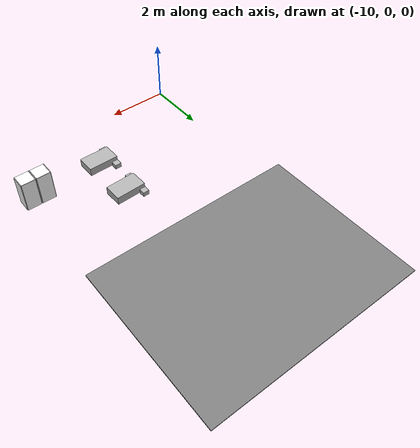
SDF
<sdf version="1.7">
 <world name="default">
  <model name="asphalt_tile_03_01">
   <static>1</static>
   <pose>-7.200 8.250 -0.020 0 -0 0</pose>
   <link name="link">
    <collision name="collision"><geometry><box><size>7.200 5.500 0.040</size></box></geometry></collision>
    <visual name="visual">
     <cast_shadows>0</cast_shadows>
     <geometry><box><size>7.200 5.500 0.040</size></box></geometry>
     <material>
      <ambient>0.5 0.5 0.5 1</ambient>
      <diffuse>0.5 0.5 0.5 1</diffuse>
      <specular>0.2 0.2 0.2 1</specular>
      <emissive>0 0 0 1</emissive>
      <pbr>
       <metal>
        <albedo_map>model://asphalt_plane/materials/textures/tarmac.png</albedo_map>
        <roughness>0.85</roughness>
        <metalness>0</metalness>
       </metal>
      </pbr>
     </material>
    </visual>
   </link>
  </model>
  <model name="bed">
   <link name="link_1">
    <inertial>
     <mass>0.166557</mass>
     <inertia>
      <ixx>0.00618823</ixx>
      <ixy>0</ixy>
      <ixz>0</ixz>
      <iyy>0.0149173</iyy>
      <iyz>0</iyz>
      <izz>0.0190304</izz>
     </inertia>
    </inertial>
    <pose>0.268517 -0.007523 0.053425 0 -0 0</pose>
    <visual name="visual">
     <geometry><box><size>1 0.609172 0.273416</size></box></geometry>
     <material>
      <ambient>0.7 0.7 0.7 1</ambient>
      <diffuse>0.7 0.7 0.7 1</diffuse>
      <specular>0.08 0.08 0.08 1</specular>
      <emissive>0 0 0 1</emissive>
      <pbr><metal><roughness>0.8</roughness><metalness>0</metalness></metal></pbr>
     </material>
    </visual>
    <collision name="collision">
     <geometry><box><size>1 0.609172 0.273416</size></box></geometry>
     <surface>
      <friction>
       <ode><mu>1</mu><mu2>1</mu2><fdir1>0 0 0</fdir1><slip1>0</slip1><slip2>0</slip2></ode>
       <torsional>
        <coefficient>1</coefficient>
        <patch_radius>0</patch_radius>
        <surface_radius>0</surface_radius>
        <use_patch_radius>1</use_patch_radius>
        <ode><slip>0</slip></ode>
       </torsional>
      </friction>
      <bounce><restitution_coefficient>0</restitution_coefficient><threshold>1e+06</threshold></bounce>
      <contact>
       <collide_without_contact>0</collide_without_contact>
       <collide_without_contact_bitmask>1</collide_without_contact_bitmask>
       <collide_bitmask>1</collide_bitmask>
       <ode>
        <soft_cfm>0</soft_cfm>
        <soft_erp>0.2</soft_erp>
        <kp>1e+13</kp>
        <kd>1</kd>
        <max_vel>0.01</max_vel>
        <min_depth>0</min_depth>
       </ode>
       <bullet>
        <split_impulse>1</split_impulse>
        <split_impulse_penetration_threshold>-0.01</split_impulse_penetration_threshold>
        <soft_cfm>0</soft_cfm>
        <soft_erp>0.2</soft_erp>
        <kp>1e+13</kp>
        <kd>1</kd>
       </bullet>
      </contact>
     </surface>
    </collision>
   </link>
   <link name="link_2">
    <inertial>
     <mass>0.00661892</mass>
     <inertia>
      <ixx>3.651e-05</ixx>
      <ixy>0</ixy>
      <ixz>0</ixz>
      <iyy>3.722e-05</iyy>
      <iyz>0</iyz>
      <izz>4.631e-05</izz>
     </inertia>
    </inertial>
    <pose>-0.144333 -0.400103 -0.02691 0 -0 0</pose>
    <visual name="visual">
     <geometry><box><size>0.206441 0.203314 0.157681</size></box></geometry>
     <material>
      <ambient>0.7 0.7 0.7 1</ambient>
      <diffuse>0.7 0.7 0.7 1</diffuse>
      <specular>0.08 0.08 0.08 1</specular>
      <emissive>0 0 0 1</emissive>
      <pbr><metal><roughness>0.8</roughness><metalness>0</metalness></metal></pbr>
     </material>
    </visual>
    <collision name="collision">
     <geometry><box><size>0.206441 0.203314 0.157681</size></box></geometry>
     <surface>
      <friction>
       <ode><mu>1</mu><mu2>1</mu2><fdir1>0 0 0</fdir1><slip1>0</slip1><slip2>0</slip2></ode>
       <torsional>
        <coefficient>1</coefficient>
        <patch_radius>0</patch_radius>
        <surface_radius>0</surface_radius>
        <use_patch_radius>1</use_patch_radius>
        <ode><slip>0</slip></ode>
       </torsional>
      </friction>
      <bounce><restitution_coefficient>0</restitution_coefficient><threshold>1e+06</threshold></bounce>
      <contact>
       <collide_without_contact>0</collide_without_contact>
       <collide_without_contact_bitmask>1</collide_without_contact_bitmask>
       <collide_bitmask>1</collide_bitmask>
       <ode>
        <soft_cfm>0</soft_cfm>
        <soft_erp>0.2</soft_erp>
        <kp>1e+13</kp>
        <kd>1</kd>
        <max_vel>0.01</max_vel>
        <min_depth>0</min_depth>
       </ode>
       <bullet>
        <split_impulse>1</split_impulse>
        <split_impulse_penetration_threshold>-0.01</split_impulse_penetration_threshold>
        <soft_cfm>0</soft_cfm>
        <soft_erp>0.2</soft_erp>
        <kp>1e+13</kp>
        <kd>1</kd>
       </bullet>
      </contact>
     </surface>
    </collision>
   </link>
   <link name="link_2_clone">
    <inertial>
     <mass>0.00661892</mass>
     <inertia>
      <ixx>3.651e-05</ixx>
      <ixy>0</ixy>
      <ixz>0</ixz>
      <iyy>3.722e-05</iyy>
      <iyz>0</iyz>
      <izz>4.631e-05</izz>
     </inertia>
    </inertial>
    <pose>-0.124183 0.407627 -0.026515 0 -0 0</pose>
    <visual name="visual">
     <geometry><box><size>0.206441 0.203314 0.157681</size></box></geometry>
     <material>
      <ambient>0.7 0.7 0.7 1</ambient>
      <diffuse>0.7 0.7 0.7 1</diffuse>
      <specular>0.08 0.08 0.08 1</specular>
      <emissive>0 0 0 1</emissive>
      <pbr><metal><roughness>0.8</roughness><metalness>0</metalness></metal></pbr>
     </material>
    </visual>
    <collision name="collision">
     <geometry><box><size>0.206441 0.203314 0.157681</size></box></geometry>
     <surface>
      <friction>
       <ode><mu>1</mu><mu2>1</mu2><fdir1>0 0 0</fdir1><slip1>0</slip1><slip2>0</slip2></ode>
       <torsional>
        <coefficient>1</coefficient>
        <patch_radius>0</patch_radius>
        <surface_radius>0</surface_radius>
        <use_patch_radius>1</use_patch_radius>
        <ode><slip>0</slip></ode>
       </torsional>
      </friction>
      <bounce><restitution_coefficient>0</restitution_coefficient><threshold>1e+06</threshold></bounce>
      <contact>
       <collide_without_contact>0</collide_without_contact>
       <collide_without_contact_bitmask>1</collide_without_contact_bitmask>
       <collide_bitmask>1</collide_bitmask>
       <ode>
        <soft_cfm>0</soft_cfm>
        <soft_erp>0.2</soft_erp>
        <kp>1e+13</kp>
        <kd>1</kd>
        <max_vel>0.01</max_vel>
        <min_depth>0</min_depth>
       </ode>
       <bullet>
        <split_impulse>1</split_impulse>
        <split_impulse_penetration_threshold>-0.01</split_impulse_penetration_threshold>
        <soft_cfm>0</soft_cfm>
        <soft_erp>0.2</soft_erp>
        <kp>1e+13</kp>
        <kd>1</kd>
       </bullet>
      </contact>
     </surface>
    </collision>
   </link>
   <static>1</static>
   <pose>-6.50619 3.49112 0.093278 1.6e-05 -0 0.037709</pose>
  </model>
  <model name="bed_clone">
   <link name="link_1">
    <inertial>
     <mass>0.166557</mass>
     <inertia>
      <ixx>0.00618823</ixx>
      <ixy>0</ixy>
      <ixz>0</ixz>
      <iyy>0.0149173</iyy>
      <iyz>0</iyz>
      <izz>0.0190304</izz>
     </inertia>
    </inertial>
    <pose>0.268517 -0.007523 0.053425 0 -0 0</pose>
    <visual name="visual">
     <geometry><box><size>1 0.609172 0.273416</size></box></geometry>
     <material>
      <ambient>0.7 0.7 0.7 1</ambient>
      <diffuse>0.7 0.7 0.7 1</diffuse>
      <specular>0.08 0.08 0.08 1</specular>
      <emissive>0 0 0 1</emissive>
      <pbr><metal><roughness>0.8</roughness><metalness>0</metalness></metal></pbr>
     </material>
    </visual>
    <collision name="collision">
     <geometry><box><size>1 0.609172 0.273416</size></box></geometry>
     <surface>
      <friction>
       <ode><mu>1</mu><mu2>1</mu2><fdir1>0 0 0</fdir1><slip1>0</slip1><slip2>0</slip2></ode>
       <torsional>
        <coefficient>1</coefficient>
        <patch_radius>0</patch_radius>
        <surface_radius>0</surface_radius>
        <use_patch_radius>1</use_patch_radius>
        <ode><slip>0</slip></ode>
       </torsional>
      </friction>
      <bounce><restitution_coefficient>0</restitution_coefficient><threshold>1e+06</threshold></bounce>
      <contact>
       <collide_without_contact>0</collide_without_contact>
       <collide_without_contact_bitmask>1</collide_without_contact_bitmask>
       <collide_bitmask>1</collide_bitmask>
       <ode>
        <soft_cfm>0</soft_cfm>
        <soft_erp>0.2</soft_erp>
        <kp>1e+13</kp>
        <kd>1</kd>
        <max_vel>0.01</max_vel>
        <min_depth>0</min_depth>
       </ode>
       <bullet>
        <split_impulse>1</split_impulse>
        <split_impulse_penetration_threshold>-0.01</split_impulse_penetration_threshold>
        <soft_cfm>0</soft_cfm>
        <soft_erp>0.2</soft_erp>
        <kp>1e+13</kp>
        <kd>1</kd>
       </bullet>
      </contact>
     </surface>
    </collision>
   </link>
   <link name="link_2">
    <inertial>
     <mass>0.00661892</mass>
     <inertia>
      <ixx>3.651e-05</ixx>
      <ixy>0</ixy>
      <ixz>0</ixz>
      <iyy>3.722e-05</iyy>
      <iyz>0</iyz>
      <izz>4.631e-05</izz>
     </inertia>
    </inertial>
    <pose>-0.144333 -0.400103 -0.02691 0 -0 0</pose>
    <visual name="visual">
     <geometry><box><size>0.206441 0.203314 0.157681</size></box></geometry>
     <material>
      <ambient>0.7 0.7 0.7 1</ambient>
      <diffuse>0.7 0.7 0.7 1</diffuse>
      <specular>0.08 0.08 0.08 1</specular>
      <emissive>0 0 0 1</emissive>
      <pbr><metal><roughness>0.8</roughness><metalness>0</metalness></metal></pbr>
     </material>
    </visual>
    <collision name="collision">
     <geometry><box><size>0.206441 0.203314 0.157681</size></box></geometry>
     <surface>
      <friction>
       <ode><mu>1</mu><mu2>1</mu2><fdir1>0 0 0</fdir1><slip1>0</slip1><slip2>0</slip2></ode>
       <torsional>
        <coefficient>1</coefficient>
        <patch_radius>0</patch_radius>
        <surface_radius>0</surface_radius>
        <use_patch_radius>1</use_patch_radius>
        <ode><slip>0</slip></ode>
       </torsional>
      </friction>
      <bounce><restitution_coefficient>0</restitution_coefficient><threshold>1e+06</threshold></bounce>
      <contact>
       <collide_without_contact>0</collide_without_contact>
       <collide_without_contact_bitmask>1</collide_without_contact_bitmask>
       <collide_bitmask>1</collide_bitmask>
       <ode>
        <soft_cfm>0</soft_cfm>
        <soft_erp>0.2</soft_erp>
        <kp>1e+13</kp>
        <kd>1</kd>
        <max_vel>0.01</max_vel>
        <min_depth>0</min_depth>
       </ode>
       <bullet>
        <split_impulse>1</split_impulse>
        <split_impulse_penetration_threshold>-0.01</split_impulse_penetration_threshold>
        <soft_cfm>0</soft_cfm>
        <soft_erp>0.2</soft_erp>
        <kp>1e+13</kp>
        <kd>1</kd>
       </bullet>
      </contact>
     </surface>
    </collision>
   </link>
   <link name="link_2_clone">
    <inertial>
     <mass>0.00661892</mass>
     <inertia>
      <ixx>3.651e-05</ixx>
      <ixy>0</ixy>
      <ixz>0</ixz>
      <iyy>3.722e-05</iyy>
      <iyz>0</iyz>
      <izz>4.631e-05</izz>
     </inertia>
    </inertial>
    <pose>-0.124183 0.407627 -0.026515 0 -0 0</pose>
    <visual name="visual">
     <geometry><box><size>0.206441 0.203314 0.157681</size></box></geometry>
     <material>
      <ambient>0.7 0.7 0.7 1</ambient>
      <diffuse>0.7 0.7 0.7 1</diffuse>
      <specular>0.08 0.08 0.08 1</specular>
      <emissive>0 0 0 1</emissive>
      <pbr><metal><roughness>0.8</roughness><metalness>0</metalness></metal></pbr>
     </material>
    </visual>
    <collision name="collision">
     <geometry><box><size>0.206441 0.203314 0.157681</size></box></geometry>
     <surface>
      <friction>
       <ode><mu>1</mu><mu2>1</mu2><fdir1>0 0 0</fdir1><slip1>0</slip1><slip2>0</slip2></ode>
       <torsional>
        <coefficient>1</coefficient>
        <patch_radius>0</patch_radius>
        <surface_radius>0</surface_radius>
        <use_patch_radius>1</use_patch_radius>
        <ode><slip>0</slip></ode>
       </torsional>
      </friction>
      <bounce><restitution_coefficient>0</restitution_coefficient><threshold>1e+06</threshold></bounce>
      <contact>
       <collide_without_contact>0</collide_without_contact>
       <collide_without_contact_bitmask>1</collide_without_contact_bitmask>
       <collide_bitmask>1</collide_bitmask>
       <ode>
        <soft_cfm>0</soft_cfm>
        <soft_erp>0.2</soft_erp>
        <kp>1e+13</kp>
        <kd>1</kd>
        <max_vel>0.01</max_vel>
        <min_depth>0</min_depth>
       </ode>
       <bullet>
        <split_impulse>1</split_impulse>
        <split_impulse_penetration_threshold>-0.01</split_impulse_penetration_threshold>
        <soft_cfm>0</soft_cfm>
        <soft_erp>0.2</soft_erp>
        <kp>1e+13</kp>
        <kd>1</kd>
       </bullet>
      </contact>
     </surface>
    </collision>
   </link>
   <static>1</static>
   <pose>-6.51457 1.90124 0.093283 0 -0 0.014289</pose>
  </model>
  <model name="cabinet">
   <static>1</static>
   <link name="cabinet_bottom_plate">
    <inertial>
     <pose>0 0 -1 0 -0 0</pose>
     <inertia><ixx>2.05</ixx><ixy>0</ixy><ixz>0</ixz><iyy>2.05</iyy><iyz>0</iyz><izz>2.05</izz></inertia>
     <mass>25</mass>
    </inertial>
    <collision name="cabinet_bottom_plate_geom">
     <pose>0 0 0.01 0 -0 0</pose>
     <geometry><box><size>0.45 0.45 0.02</size></box></geometry>
    </collision>
    <visual name="cabinet_bottom_plate_geom_visual">
     <pose>0 0 0.01 0 -0 0</pose>
     <geometry><box><size>0.45 0.45 0.02</size></box></geometry>
     <material>
      <ambient>1 1 1 1</ambient>
      <diffuse>1 1 1 1</diffuse>
      <specular>0.08 0.08 0.08 1</specular>
      <emissive>0 0 0 1</emissive>
      <pbr>
       <metal>
        <albedo_map>model://among_us_world/materials/textures/legacy_wood.jpg</albedo_map>
        <roughness>0.62</roughness>
        <metalness>0</metalness>
       </metal>
      </pbr>
     </material>
    </visual>
    <collision name="cabinet_bottom_plate_geom_cabinet_back_plate">
     <pose>0.235 0 0.51 0 -0 0</pose>
     <geometry><box><size>0.02 0.45 1.02</size></box></geometry>
    </collision>
    <visual name="cabinet_bottom_plate_geom_cabinet_back_plate_visual">
     <pose>0.235 0 0.51 0 -0 0</pose>
     <geometry><box><size>0.02 0.45 1.02</size></box></geometry>
     <material>
      <ambient>1 1 1 1</ambient>
      <diffuse>1 1 1 1</diffuse>
      <specular>0.08 0.08 0.08 1</specular>
      <emissive>0 0 0 1</emissive>
      <pbr>
       <metal>
        <albedo_map>model://among_us_world/materials/textures/legacy_wood.jpg</albedo_map>
        <roughness>0.62</roughness>
        <metalness>0</metalness>
       </metal>
      </pbr>
     </material>
    </visual>
    <collision name="cabinet_bottom_plate_geom_cabinet_left_plate">
     <pose>0 0.235 0.51 0 -0 0</pose>
     <geometry><box><size>0.45 0.02 1.02</size></box></geometry>
    </collision>
    <visual name="cabinet_bottom_plate_geom_cabinet_left_plate_visual">
     <pose>0 0.235 0.51 0 -0 0</pose>
     <geometry><box><size>0.45 0.02 1.02</size></box></geometry>
     <material>
      <ambient>1 1 1 1</ambient>
      <diffuse>1 1 1 1</diffuse>
      <specular>0.08 0.08 0.08 1</specular>
      <emissive>0 0 0 1</emissive>
      <pbr>
       <metal>
        <albedo_map>model://among_us_world/materials/textures/legacy_wood.jpg</albedo_map>
        <roughness>0.62</roughness>
        <metalness>0</metalness>
       </metal>
      </pbr>
     </material>
    </visual>
    <collision name="cabinet_bottom_plate_geom_cabinet_middle_plate">
     <pose>0 0 0.51 0 -0 0</pose>
     <geometry><box><size>0.45 0.45 0.02</size></box></geometry>
    </collision>
    <visual name="cabinet_bottom_plate_geom_cabinet_middle_plate_visual">
     <pose>0 0 0.51 0 -0 0</pose>
     <geometry><box><size>0.45 0.45 0.02</size></box></geometry>
     <material>
      <ambient>1 1 1 1</ambient>
      <diffuse>1 1 1 1</diffuse>
      <specular>0.08 0.08 0.08 1</specular>
      <emissive>0 0 0 1</emissive>
      <pbr>
       <metal>
        <albedo_map>model://among_us_world/materials/textures/legacy_wood.jpg</albedo_map>
        <roughness>0.62</roughness>
        <metalness>0</metalness>
       </metal>
      </pbr>
     </material>
    </visual>
    <collision name="cabinet_bottom_plate_geom_cabinet_right_plate">
     <pose>0 -0.235 0.51 0 -0 0</pose>
     <geometry><box><size>0.45 0.02 1.02</size></box></geometry>
    </collision>
    <visual name="cabinet_bottom_plate_geom_cabinet_right_plate_visual">
     <pose>0 -0.235 0.51 0 -0 0</pose>
     <geometry><box><size>0.45 0.02 1.02</size></box></geometry>
     <material>
      <ambient>1 1 1 1</ambient>
      <diffuse>1 1 1 1</diffuse>
      <specular>0.08 0.08 0.08 1</specular>
      <emissive>0 0 0 1</emissive>
      <pbr>
       <metal>
        <albedo_map>model://among_us_world/materials/textures/legacy_wood.jpg</albedo_map>
        <roughness>0.62</roughness>
        <metalness>0</metalness>
       </metal>
      </pbr>
     </material>
    </visual>
    <collision name="cabinet_bottom_plate_geom_cabinet_top_plate">
     <pose>0 0 1.01 0 -0 0</pose>
     <geometry><box><size>0.45 0.45 0.02</size></box></geometry>
    </collision>
    <visual name="cabinet_bottom_plate_geom_cabinet_top_plate_visual">
     <pose>0 0 1.01 0 -0 0</pose>
     <geometry><box><size>0.45 0.45 0.02</size></box></geometry>
     <material>
      <ambient>1 1 1 1</ambient>
      <diffuse>1 1 1 1</diffuse>
      <specular>0.08 0.08 0.08 1</specular>
      <emissive>0 0 0 1</emissive>
      <pbr>
       <metal>
        <albedo_map>model://among_us_world/materials/textures/legacy_wood.jpg</albedo_map>
        <roughness>0.62</roughness>
        <metalness>0</metalness>
       </metal>
      </pbr>
     </material>
    </visual>
   </link>
   <pose>-3.71836 2.07896 0 0 -0 1.57</pose>
  </model>
  <model name="cabinet_clone_1">
   <static>1</static>
   <link name="cabinet_bottom_plate">
    <inertial>
     <pose>0 0 -1 0 -0 0</pose>
     <inertia><ixx>2.05</ixx><ixy>0</ixy><ixz>0</ixz><iyy>2.05</iyy><iyz>0</iyz><izz>2.05</izz></inertia>
     <mass>25</mass>
    </inertial>
    <collision name="cabinet_bottom_plate_geom">
     <pose>0 0 0.01 0 -0 0</pose>
     <geometry><box><size>0.45 0.45 0.02</size></box></geometry>
    </collision>
    <visual name="cabinet_bottom_plate_geom_visual">
     <pose>0 0 0.01 0 -0 0</pose>
     <geometry><box><size>0.45 0.45 0.02</size></box></geometry>
     <material>
      <ambient>1 1 1 1</ambient>
      <diffuse>1 1 1 1</diffuse>
      <specular>0.08 0.08 0.08 1</specular>
      <emissive>0 0 0 1</emissive>
      <pbr>
       <metal>
        <albedo_map>model://among_us_world/materials/textures/legacy_wood.jpg</albedo_map>
        <roughness>0.62</roughness>
        <metalness>0</metalness>
       </metal>
      </pbr>
     </material>
    </visual>
    <collision name="cabinet_bottom_plate_geom_cabinet_back_plate">
     <pose>0.235 0 0.51 0 -0 0</pose>
     <geometry><box><size>0.02 0.45 1.02</size></box></geometry>
    </collision>
    <visual name="cabinet_bottom_plate_geom_cabinet_back_plate_visual">
     <pose>0.235 0 0.51 0 -0 0</pose>
     <geometry><box><size>0.02 0.45 1.02</size></box></geometry>
     <material>
      <ambient>1 1 1 1</ambient>
      <diffuse>1 1 1 1</diffuse>
      <specular>0.08 0.08 0.08 1</specular>
      <emissive>0 0 0 1</emissive>
      <pbr>
       <metal>
        <albedo_map>model://among_us_world/materials/textures/legacy_wood.jpg</albedo_map>
        <roughness>0.62</roughness>
        <metalness>0</metalness>
       </metal>
      </pbr>
     </material>
    </visual>
    <collision name="cabinet_bottom_plate_geom_cabinet_left_plate">
     <pose>0 0.235 0.51 0 -0 0</pose>
     <geometry><box><size>0.45 0.02 1.02</size></box></geometry>
    </collision>
    <visual name="cabinet_bottom_plate_geom_cabinet_left_plate_visual">
     <pose>0 0.235 0.51 0 -0 0</pose>
     <geometry><box><size>0.45 0.02 1.02</size></box></geometry>
     <material>
      <ambient>1 1 1 1</ambient>
      <diffuse>1 1 1 1</diffuse>
      <specular>0.08 0.08 0.08 1</specular>
      <emissive>0 0 0 1</emissive>
      <pbr>
       <metal>
        <albedo_map>model://among_us_world/materials/textures/legacy_wood.jpg</albedo_map>
        <roughness>0.62</roughness>
        <metalness>0</metalness>
       </metal>
      </pbr>
     </material>
    </visual>
    <collision name="cabinet_bottom_plate_geom_cabinet_middle_plate">
     <pose>0 0 0.51 0 -0 0</pose>
     <geometry><box><size>0.45 0.45 0.02</size></box></geometry>
    </collision>
    <visual name="cabinet_bottom_plate_geom_cabinet_middle_plate_visual">
     <pose>0 0 0.51 0 -0 0</pose>
     <geometry><box><size>0.45 0.45 0.02</size></box></geometry>
     <material>
      <ambient>1 1 1 1</ambient>
      <diffuse>1 1 1 1</diffuse>
      <specular>0.08 0.08 0.08 1</specular>
      <emissive>0 0 0 1</emissive>
      <pbr>
       <metal>
        <albedo_map>model://among_us_world/materials/textures/legacy_wood.jpg</albedo_map>
        <roughness>0.62</roughness>
        <metalness>0</metalness>
       </metal>
      </pbr>
     </material>
    </visual>
    <collision name="cabinet_bottom_plate_geom_cabinet_right_plate">
     <pose>0 -0.235 0.51 0 -0 0</pose>
     <geometry><box><size>0.45 0.02 1.02</size></box></geometry>
    </collision>
    <visual name="cabinet_bottom_plate_geom_cabinet_right_plate_visual">
     <pose>0 -0.235 0.51 0 -0 0</pose>
     <geometry><box><size>0.45 0.02 1.02</size></box></geometry>
     <material>
      <ambient>1 1 1 1</ambient>
      <diffuse>1 1 1 1</diffuse>
      <specular>0.08 0.08 0.08 1</specular>
      <emissive>0 0 0 1</emissive>
      <pbr>
       <metal>
        <albedo_map>model://among_us_world/materials/textures/legacy_wood.jpg</albedo_map>
        <roughness>0.62</roughness>
        <metalness>0</metalness>
       </metal>
      </pbr>
     </material>
    </visual>
    <collision name="cabinet_bottom_plate_geom_cabinet_top_plate">
     <pose>0 0 1.01 0 -0 0</pose>
     <geometry><box><size>0.45 0.45 0.02</size></box></geometry>
    </collision>
    <visual name="cabinet_bottom_plate_geom_cabinet_top_plate_visual">
     <pose>0 0 1.01 0 -0 0</pose>
     <geometry><box><size>0.45 0.45 0.02</size></box></geometry>
     <material>
      <ambient>1 1 1 1</ambient>
      <diffuse>1 1 1 1</diffuse>
      <specular>0.08 0.08 0.08 1</specular>
      <emissive>0 0 0 1</emissive>
      <pbr>
       <metal>
        <albedo_map>model://among_us_world/materials/textures/legacy_wood.jpg</albedo_map>
        <roughness>0.62</roughness>
        <metalness>0</metalness>
       </metal>
      </pbr>
     </material>
    </visual>
   </link>
   <pose>-4.20863 2.07845 0 0 -0 1.57</pose>
  </model>
 </world>
</sdf>
